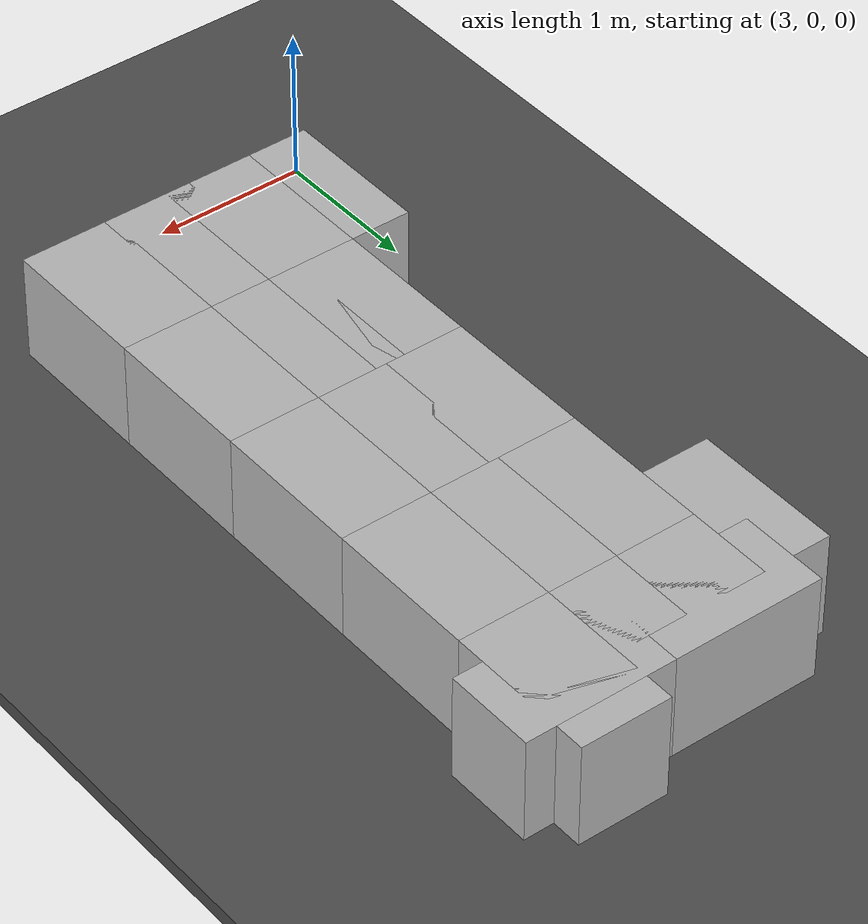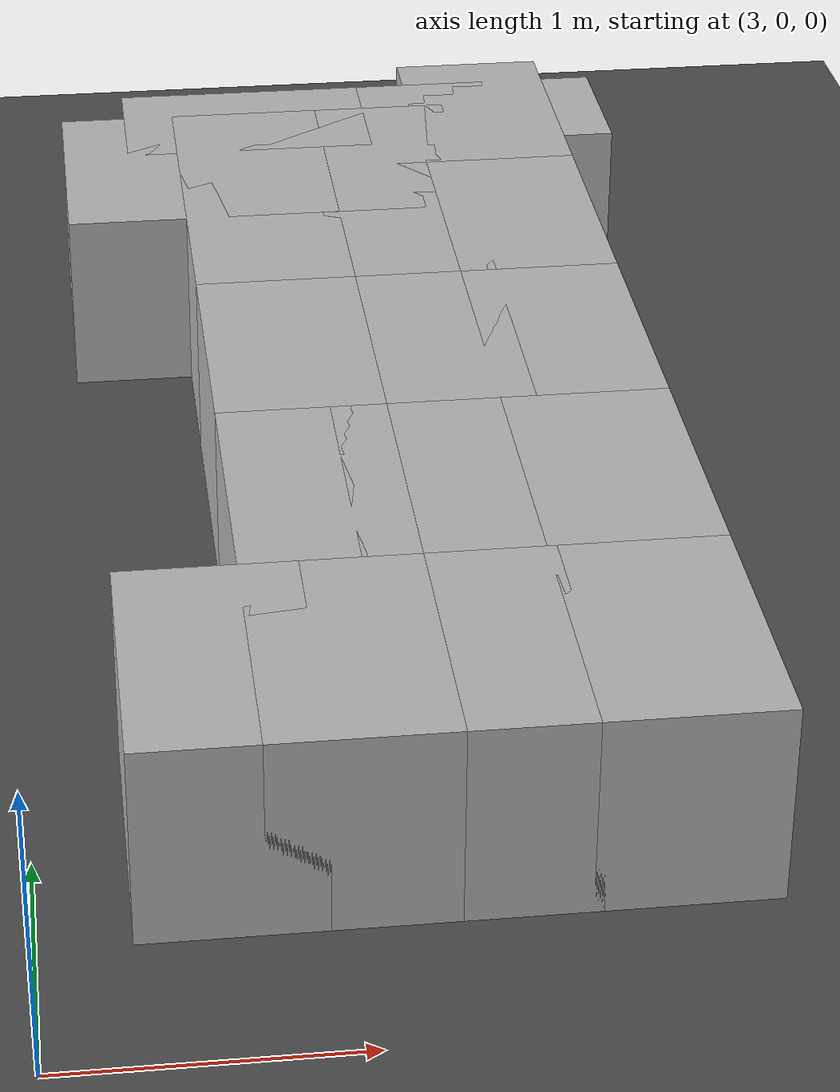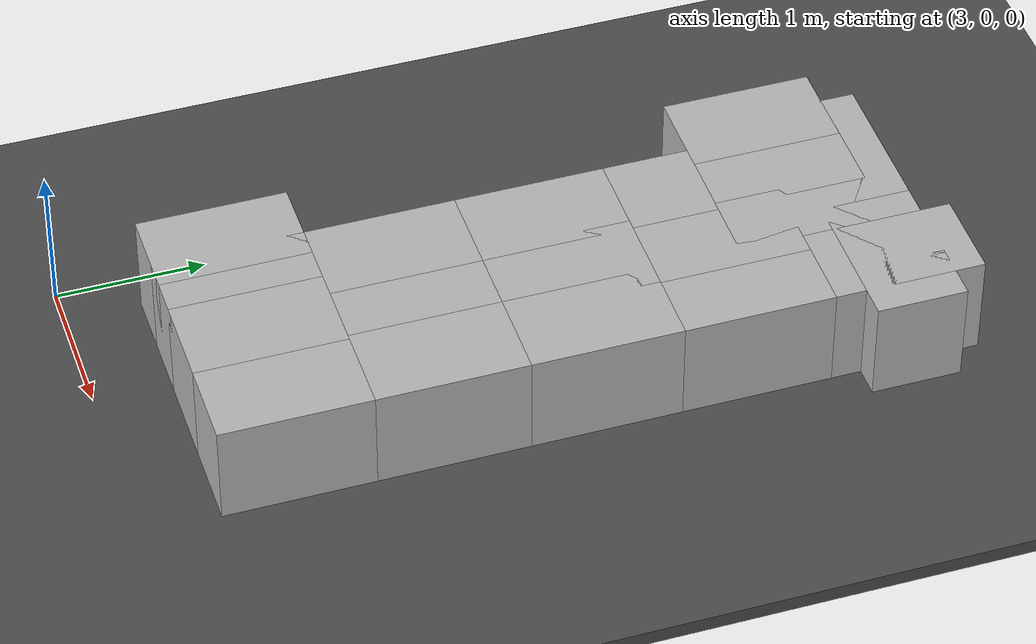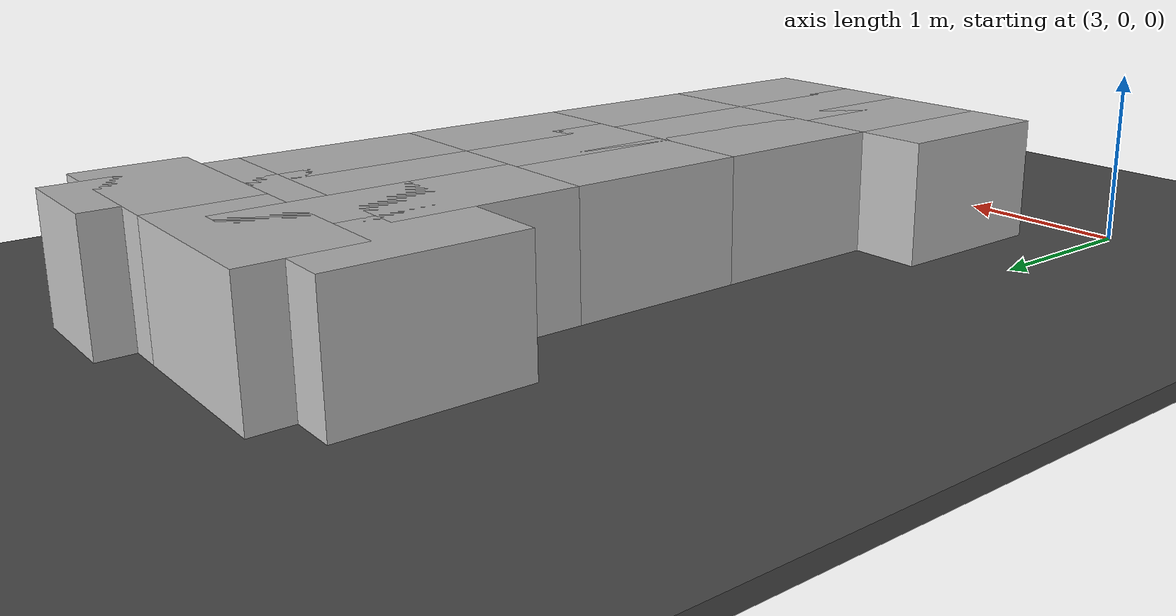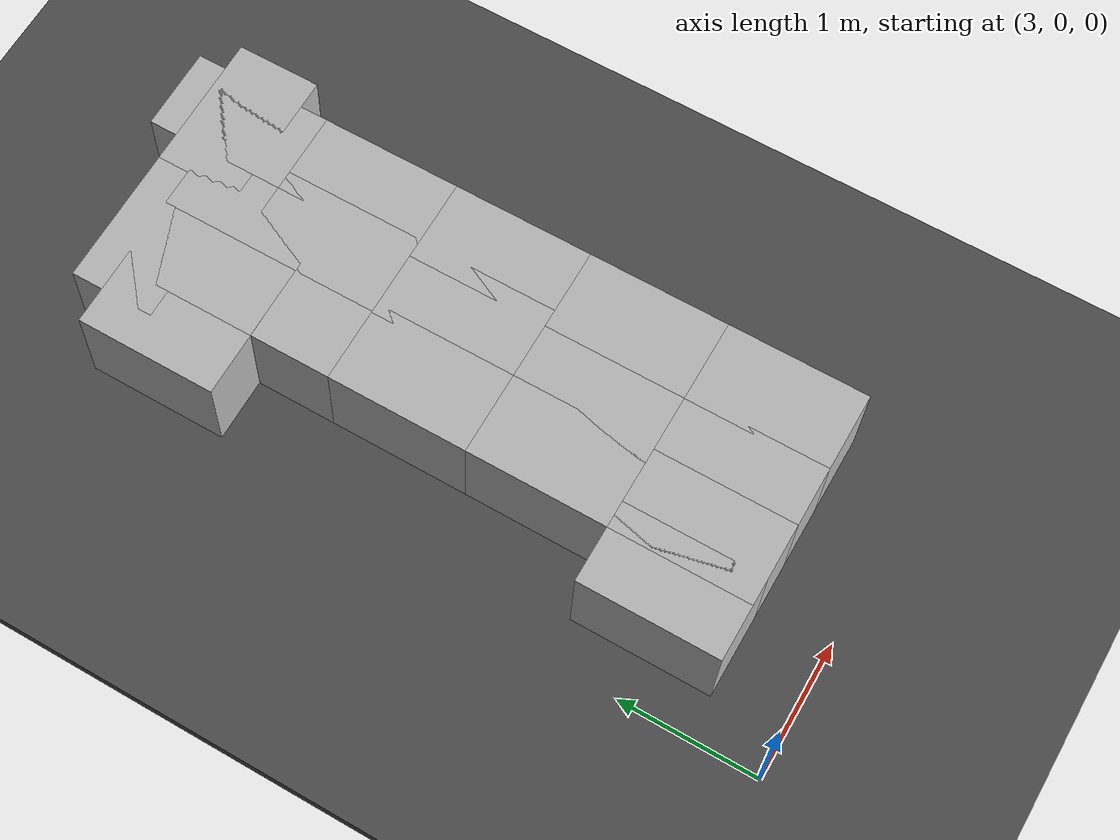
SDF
<sdf version="1.4">
 <world name="default">
  <model name="ground_plane">
   <static>1</static>
   <link name="link">
    <collision name="collision">
     <geometry><plane><normal>0 0 1</normal><size>100 100</size></plane></geometry>
     <surface><friction><ode><mu>100</mu><mu2>50</mu2></ode></friction></surface>
    </collision>
    <visual name="visual">
     <cast_shadows>0</cast_shadows>
     <geometry><plane><normal>0 0 1</normal><size>100 100</size></plane></geometry>
     <material>
      <script><uri>file://media/materials/scripts/gazebo.material</uri><name>Gazebo/Grey</name></script>
     </material>
    </visual>
    <velocity_decay><linear>0</linear><angular>0</angular></velocity_decay>
   </link>
  </model>
  <model name="wall_17">
   <static>1</static>
   <link name="link">
    <pose>0 0 0.25 0 -0 0</pose>
    <collision name="collision"><geometry><box><size>0.6 1 1</size></box></geometry></collision>
    <visual name="visual">
     <geometry>
      <mesh><uri>model://brick_box_3x1x3/meshes/simple_box.dae</uri><scale>0.6 1 1</scale></mesh>
     </geometry>
     <material>
      <script>
       <uri>model://brick_box_3x1x3/materials/scripts</uri>
       <uri>model://brick_box_3x1x3/materials/textures</uri>
       <name>BrickBox/Diffuse</name>
      </script>
     </material>
    </visual>
    <velocity_decay><linear>0</linear><angular>0</angular></velocity_decay>
   </link>
   <pose>5 1 0 0 -0 0</pose>
  </model>
  <model name="wall_18">
   <static>1</static>
   <link name="link">
    <pose>0 0 0.25 0 -0 0</pose>
    <collision name="collision"><geometry><box><size>0.6 1 1</size></box></geometry></collision>
    <visual name="visual">
     <geometry>
      <mesh><uri>model://brick_box_3x1x3/meshes/simple_box.dae</uri><scale>0.6 1 1</scale></mesh>
     </geometry>
     <material>
      <script>
       <uri>model://brick_box_3x1x3/materials/scripts</uri>
       <uri>model://brick_box_3x1x3/materials/textures</uri>
       <name>BrickBox/Diffuse</name>
      </script>
     </material>
    </visual>
    <velocity_decay><linear>0</linear><angular>0</angular></velocity_decay>
   </link>
   <pose>5 2 0 0 -0 0</pose>
  </model>
  <model name="wall_19">
   <static>1</static>
   <link name="link">
    <pose>0 0 0.25 0 -0 0</pose>
    <collision name="collision"><geometry><box><size>0.6 1 1</size></box></geometry></collision>
    <visual name="visual">
     <geometry>
      <mesh><uri>model://brick_box_3x1x3/meshes/simple_box.dae</uri><scale>0.6 1 1</scale></mesh>
     </geometry>
     <material>
      <script>
       <uri>model://brick_box_3x1x3/materials/scripts</uri>
       <uri>model://brick_box_3x1x3/materials/textures</uri>
       <name>BrickBox/Diffuse</name>
      </script>
     </material>
    </visual>
    <velocity_decay><linear>0</linear><angular>0</angular></velocity_decay>
   </link>
   <pose>5 3 0 0 -0 0</pose>
  </model>
  <model name="wall_20">
   <static>1</static>
   <link name="link">
    <pose>0 0 0.25 0 -0 0</pose>
    <collision name="collision"><geometry><box><size>0.6 1 1</size></box></geometry></collision>
    <visual name="visual">
     <geometry>
      <mesh><uri>model://brick_box_3x1x3/meshes/simple_box.dae</uri><scale>0.6 1 1</scale></mesh>
     </geometry>
     <material>
      <script>
       <uri>model://brick_box_3x1x3/materials/scripts</uri>
       <uri>model://brick_box_3x1x3/materials/textures</uri>
       <name>BrickBox/Diffuse</name>
      </script>
     </material>
    </visual>
    <velocity_decay><linear>0</linear><angular>0</angular></velocity_decay>
   </link>
   <pose>5 4 0 0 -0 0</pose>
  </model>
  <model name="wall_21">
   <static>1</static>
   <link name="link">
    <pose>0 0 0.25 0 -0 0</pose>
    <collision name="collision"><geometry><box><size>0.6 1 1</size></box></geometry></collision>
    <visual name="visual">
     <geometry>
      <mesh><uri>model://brick_box_3x1x3/meshes/simple_box.dae</uri><scale>0.6 1 1</scale></mesh>
     </geometry>
     <material>
      <script>
       <uri>model://brick_box_3x1x3/materials/scripts</uri>
       <uri>model://brick_box_3x1x3/materials/textures</uri>
       <name>BrickBox/Diffuse</name>
      </script>
     </material>
    </visual>
    <velocity_decay><linear>0</linear><angular>0</angular></velocity_decay>
   </link>
   <pose>5 5 0 0 -0 0</pose>
  </model>
  <model name="wall_22">
   <static>1</static>
   <link name="link">
    <pose>0 0 0.25 0 -0 0</pose>
    <collision name="collision"><geometry><box><size>1 0.6 1</size></box></geometry></collision>
    <visual name="visual">
     <geometry>
      <mesh><uri>model://brick_box_3x1x3/meshes/simple_box.dae</uri><scale>1 0.6 1</scale></mesh>
     </geometry>
     <material>
      <script>
       <uri>model://brick_box_3x1x3/materials/scripts</uri>
       <uri>model://brick_box_3x1x3/materials/textures</uri>
       <name>BrickBox/Diffuse</name>
      </script>
     </material>
    </visual>
    <velocity_decay><linear>0</linear><angular>0</angular></velocity_decay>
   </link>
   <pose>4 5 0 0 -0 0</pose>
  </model>
  <model name="wall_23">
   <static>1</static>
   <link name="link">
    <pose>0 0 0.25 0 -0 0</pose>
    <collision name="collision"><geometry><box><size>1 0.6 1</size></box></geometry></collision>
    <visual name="visual">
     <geometry>
      <mesh><uri>model://brick_box_3x1x3/meshes/simple_box.dae</uri><scale>1 0.6 1</scale></mesh>
     </geometry>
     <material>
      <script>
       <uri>model://brick_box_3x1x3/materials/scripts</uri>
       <uri>model://brick_box_3x1x3/materials/textures</uri>
       <name>BrickBox/Diffuse</name>
      </script>
     </material>
    </visual>
    <velocity_decay><linear>0</linear><angular>0</angular></velocity_decay>
   </link>
   <pose>5 5 0 0 -0 0</pose>
  </model>
  <model name="wall_101">
   <static>1</static>
   <link name="link">
    <pose>0 0 0.25 0 -0 0</pose>
    <collision name="collision"><geometry><box><size>0.6 1 1</size></box></geometry></collision>
    <visual name="visual">
     <geometry>
      <mesh><uri>model://brick_box_3x1x3/meshes/simple_box.dae</uri><scale>0.6 1 1</scale></mesh>
     </geometry>
     <material>
      <script>
       <uri>model://brick_box_3x1x3/materials/scripts</uri>
       <uri>model://brick_box_3x1x3/materials/textures</uri>
       <name>BrickBox/Diffuse</name>
      </script>
     </material>
    </visual>
    <velocity_decay><linear>0</linear><angular>0</angular></velocity_decay>
   </link>
   <pose>4 1 0 0 -0 0</pose>
  </model>
  <model name="wall_102">
   <static>1</static>
   <link name="link">
    <pose>0 0 0.25 0 -0 0</pose>
    <collision name="collision"><geometry><box><size>0.6 1 1</size></box></geometry></collision>
    <visual name="visual">
     <geometry>
      <mesh><uri>model://brick_box_3x1x3/meshes/simple_box.dae</uri><scale>0.6 1 1</scale></mesh>
     </geometry>
     <material>
      <script>
       <uri>model://brick_box_3x1x3/materials/scripts</uri>
       <uri>model://brick_box_3x1x3/materials/textures</uri>
       <name>BrickBox/Diffuse</name>
      </script>
     </material>
    </visual>
    <velocity_decay><linear>0</linear><angular>0</angular></velocity_decay>
   </link>
   <pose>3.59742 1 0 0 -0 0</pose>
  </model>
  <model name="wall_106">
   <static>1</static>
   <link name="link">
    <pose>0 0 0.25 0 -0 0</pose>
    <collision name="collision"><geometry><box><size>0.6 1 1</size></box></geometry></collision>
    <visual name="visual">
     <geometry>
      <mesh><uri>model://brick_box_3x1x3/meshes/simple_box.dae</uri><scale>0.6 1 1</scale></mesh>
     </geometry>
     <material>
      <script>
       <uri>model://brick_box_3x1x3/materials/scripts</uri>
       <uri>model://brick_box_3x1x3/materials/textures</uri>
       <name>BrickBox/Diffuse</name>
      </script>
     </material>
    </visual>
    <velocity_decay><linear>0</linear><angular>0</angular></velocity_decay>
   </link>
   <pose>4.43224 1 0 0 -0 0</pose>
  </model>
  <model name="wall_63">
   <static>1</static>
   <link name="link">
    <pose>0 0 0.25 0 -0 0</pose>
    <collision name="collision"><geometry><box><size>0.6 1 1</size></box></geometry></collision>
    <visual name="visual">
     <geometry>
      <mesh><uri>model://brick_box_3x1x3/meshes/simple_box.dae</uri><scale>0.6 1 1</scale></mesh>
     </geometry>
     <material>
      <script>
       <uri>model://brick_box_3x1x3/materials/scripts</uri>
       <uri>model://brick_box_3x1x3/materials/textures</uri>
       <name>BrickBox/Diffuse</name>
      </script>
     </material>
    </visual>
    <velocity_decay><linear>0</linear><angular>0</angular></velocity_decay>
   </link>
   <pose>4 2 0 0 -0 0</pose>
  </model>
  <model name="wall_64">
   <static>1</static>
   <link name="link">
    <pose>0 0 0.25 0 -0 0</pose>
    <collision name="collision"><geometry><box><size>0.6 1 1</size></box></geometry></collision>
    <visual name="visual">
     <geometry>
      <mesh><uri>model://brick_box_3x1x3/meshes/simple_box.dae</uri><scale>0.6 1 1</scale></mesh>
     </geometry>
     <material>
      <script>
       <uri>model://brick_box_3x1x3/materials/scripts</uri>
       <uri>model://brick_box_3x1x3/materials/textures</uri>
       <name>BrickBox/Diffuse</name>
      </script>
     </material>
    </visual>
    <velocity_decay><linear>0</linear><angular>0</angular></velocity_decay>
   </link>
   <pose>4 3 0 0 -0 0</pose>
  </model>
  <model name="wall_65">
   <static>1</static>
   <link name="link">
    <pose>0 0 0.25 0 -0 0</pose>
    <collision name="collision"><geometry><box><size>0.6 1 1</size></box></geometry></collision>
    <visual name="visual">
     <geometry>
      <mesh><uri>model://brick_box_3x1x3/meshes/simple_box.dae</uri><scale>0.6 1 1</scale></mesh>
     </geometry>
     <material>
      <script>
       <uri>model://brick_box_3x1x3/materials/scripts</uri>
       <uri>model://brick_box_3x1x3/materials/textures</uri>
       <name>BrickBox/Diffuse</name>
      </script>
     </material>
    </visual>
    <velocity_decay><linear>0</linear><angular>0</angular></velocity_decay>
   </link>
   <pose>4 4 0 0 -0 0</pose>
  </model>
  <model name="wall_67">
   <static>1</static>
   <link name="link">
    <pose>0 0 0.25 0 -0 0</pose>
    <collision name="collision"><geometry><box><size>0.6 1 1</size></box></geometry></collision>
    <visual name="visual">
     <geometry>
      <mesh><uri>model://brick_box_3x1x3/meshes/simple_box.dae</uri><scale>0.6 1 1</scale></mesh>
     </geometry>
     <material>
      <script>
       <uri>model://brick_box_3x1x3/materials/scripts</uri>
       <uri>model://brick_box_3x1x3/materials/textures</uri>
       <name>BrickBox/Diffuse</name>
      </script>
     </material>
    </visual>
    <velocity_decay><linear>0</linear><angular>0</angular></velocity_decay>
   </link>
   <pose>4 4.57627 0 0 -0 0</pose>
  </model>
  <model name="wall_68">
   <static>1</static>
   <link name="link">
    <pose>0 0 0.25 0 -0 0</pose>
    <collision name="collision"><geometry><box><size>0.6 1 1</size></box></geometry></collision>
    <visual name="visual">
     <geometry>
      <mesh><uri>model://brick_box_3x1x3/meshes/simple_box.dae</uri><scale>0.6 1 1</scale></mesh>
     </geometry>
     <material>
      <script>
       <uri>model://brick_box_3x1x3/materials/scripts</uri>
       <uri>model://brick_box_3x1x3/materials/textures</uri>
       <name>BrickBox/Diffuse</name>
      </script>
     </material>
    </visual>
    <velocity_decay><linear>0</linear><angular>0</angular></velocity_decay>
   </link>
   <pose>4.40139 2 0 0 -0 0</pose>
  </model>
  <model name="wall_73">
   <static>1</static>
   <link name="link">
    <pose>0 0 0.25 0 -0 0</pose>
    <collision name="collision"><geometry><box><size>0.6 1 1</size></box></geometry></collision>
    <visual name="visual">
     <geometry>
      <mesh><uri>model://brick_box_3x1x3/meshes/simple_box.dae</uri><scale>0.6 1 1</scale></mesh>
     </geometry>
     <material>
      <script>
       <uri>model://brick_box_3x1x3/materials/scripts</uri>
       <uri>model://brick_box_3x1x3/materials/textures</uri>
       <name>BrickBox/Diffuse</name>
      </script>
     </material>
    </visual>
    <velocity_decay><linear>0</linear><angular>0</angular></velocity_decay>
   </link>
   <pose>4.5289 3 0 0 -0 0</pose>
  </model>
  <model name="wall_74">
   <static>1</static>
   <link name="link">
    <pose>0 0 0.25 0 -0 0</pose>
    <collision name="collision"><geometry><box><size>0.6 1 1</size></box></geometry></collision>
    <visual name="visual">
     <geometry>
      <mesh><uri>model://brick_box_3x1x3/meshes/simple_box.dae</uri><scale>0.6 1 1</scale></mesh>
     </geometry>
     <material>
      <script>
       <uri>model://brick_box_3x1x3/materials/scripts</uri>
       <uri>model://brick_box_3x1x3/materials/textures</uri>
       <name>BrickBox/Diffuse</name>
      </script>
     </material>
    </visual>
    <velocity_decay><linear>0</linear><angular>0</angular></velocity_decay>
   </link>
   <pose>4.5365 4 0 0 -0 0</pose>
  </model>
  <model name="wall_81">
   <static>1</static>
   <link name="link">
    <pose>0 0 0.25 0 -0 0</pose>
    <collision name="collision"><geometry><box><size>0.6 1 1</size></box></geometry></collision>
    <visual name="visual">
     <geometry>
      <mesh><uri>model://brick_box_3x1x3/meshes/simple_box.dae</uri><scale>0.6 1 1</scale></mesh>
     </geometry>
     <material>
      <script>
       <uri>model://brick_box_3x1x3/materials/scripts</uri>
       <uri>model://brick_box_3x1x3/materials/textures</uri>
       <name>BrickBox/Diffuse</name>
      </script>
     </material>
    </visual>
    <velocity_decay><linear>0</linear><angular>0</angular></velocity_decay>
   </link>
   <pose>4.53831 4.57495 0 0 -0 0</pose>
  </model>
  <model name="wall_131">
   <static>1</static>
   <link name="link">
    <pose>0 0 0.25 0 -0 0</pose>
    <collision name="collision"><geometry><box><size>0.6 1 1</size></box></geometry></collision>
    <visual name="visual">
     <geometry>
      <mesh><uri>model://brick_box_3x1x3/meshes/simple_box.dae</uri><scale>0.6 1 1</scale></mesh>
     </geometry>
     <material>
      <script>
       <uri>model://brick_box_3x1x3/materials/scripts</uri>
       <uri>model://brick_box_3x1x3/materials/textures</uri>
       <name>BrickBox/Diffuse</name>
      </script>
     </material>
    </visual>
    <velocity_decay><linear>0</linear><angular>0</angular></velocity_decay>
   </link>
   <pose>3.54155 4.57465 0 0 -0 0</pose>
  </model>
  <model name="asphalt_plane">
   <static>1</static>
   <link name="link">
    <collision name="collision"><geometry><box><size>20 20 0.1</size></box></geometry></collision>
    <visual name="visual">
     <cast_shadows>0</cast_shadows>
     <geometry><box><size>20 20 0.1</size></box></geometry>
     <material>
      <script>
       <uri>model://asphalt_plane/materials/scripts</uri>
       <uri>model://asphalt_plane/materials/textures</uri>
       <name>vrc/asphalt</name>
      </script>
     </material>
    </visual>
    <velocity_decay><linear>0</linear><angular>0</angular></velocity_decay>
   </link>
  </model>
 </world>
</sdf>
